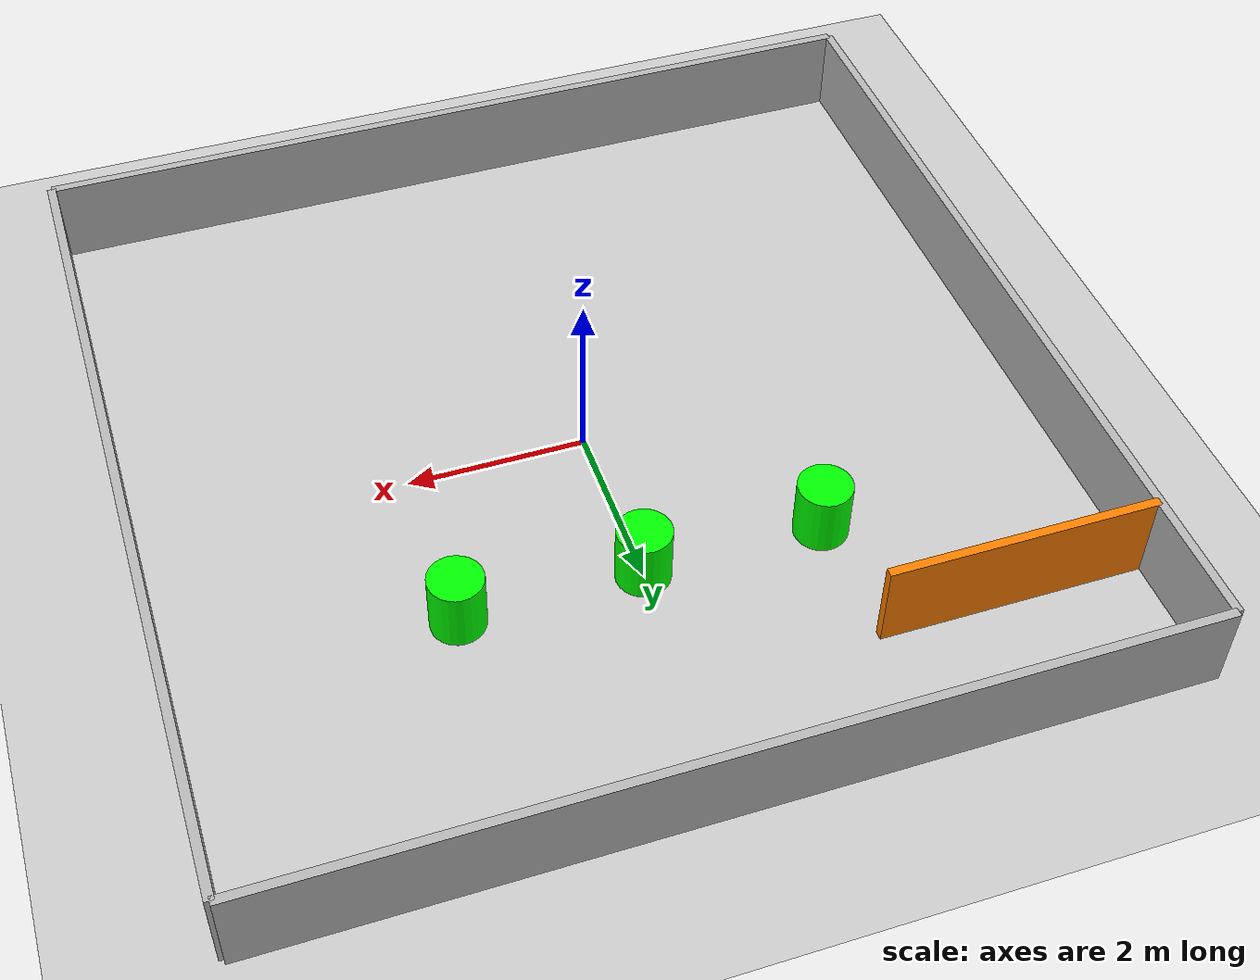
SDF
<?xml version="1.0" ?>
<sdf version="1.6">
  <world name="cafe_world">

    <include>
      <uri>model://sun</uri>
    </include>

    <include>
      <uri>model://ground_plane</uri>
    </include>

    <!-- Room boundary walls -->
    <model name="wall_north">
      <static>true</static>
      <link name="link">
        <collision name="collision">
          <geometry><box><size>10 0.1 1</size></box></geometry>
        </collision>
        <visual name="visual">
          <geometry><box><size>10 0.1 1</size></box></geometry>
        </visual>
        <pose>0 5 0.5 0 0 0</pose>
      </link>
    </model>

    <model name="wall_south">
      <static>true</static>
      <link name="link">
        <collision name="collision">
          <geometry><box><size>10 0.1 1</size></box></geometry>
        </collision>
        <visual name="visual">
          <geometry><box><size>10 0.1 1</size></box></geometry>
        </visual>
        <pose>0 -5 0.5 0 0 0</pose>
      </link>
    </model>

    <model name="wall_east">
      <static>true</static>
      <link name="link">
        <collision name="collision">
          <geometry><box><size>0.1 10 1</size></box></geometry>
        </collision>
        <visual name="visual">
          <geometry><box><size>0.1 10 1</size></box></geometry>
        </visual>
        <pose>5 0 0.5 0 0 0</pose>
      </link>
    </model>

    <model name="wall_west">
      <static>true</static>
      <link name="link">
        <collision name="collision">
          <geometry><box><size>0.1 10 1</size></box></geometry>
        </collision>
        <visual name="visual">
          <geometry><box><size>0.1 10 1</size></box></geometry>
        </visual>
        <pose>-5 0 0.5 0 0 0</pose>
      </link>
    </model>

    <!-- Kitchen wall (top-left corner) -->
    <model name="kitchen_wall">
      <static>true</static>
      <link name="link">
        <collision name="collision">
          <geometry><box><size>3 0.1 1</size></box></geometry>
        </collision>
        <visual name="visual">
          <geometry><box><size>3 0.1 1</size></box></geometry>
          <material><ambient>1 0.5 0 1</ambient></material>
        </visual>
        <pose>-3.5 3.5 0.5 0 0 0</pose>
      </link>
    </model>

    <!-- Tables -->
    <model name="table1">
      <static>true</static>
      <link name="link">
        <visual name="visual">
          <geometry><cylinder><radius>0.3</radius><length>0.7</length></cylinder></geometry>
          <material><ambient>0 1 0 1</ambient></material>
        </visual>
        <pose>2 2 0.35 0 0 0</pose>
      </link>
    </model>

    <model name="table2">
      <static>true</static>
      <link name="link">
        <visual name="visual">
          <geometry><cylinder><radius>0.3</radius><length>0.7</length></cylinder></geometry>
          <material><ambient>0 1 0 1</ambient></material>
        </visual>
        <pose>0 2 0.35 0 0 0</pose>
      </link>
    </model>

    <model name="table3">
      <static>true</static>
      <link name="link">
        <visual name="visual">
          <geometry><cylinder><radius>0.3</radius><length>0.7</length></cylinder></geometry>
          <material><ambient>0 1 0 1</ambient></material>
        </visual>
        <pose>-2 2 0.35 0 0 0</pose>
      </link>
    </model>

  </world>
</sdf>
